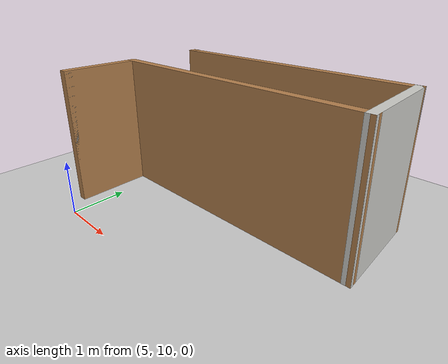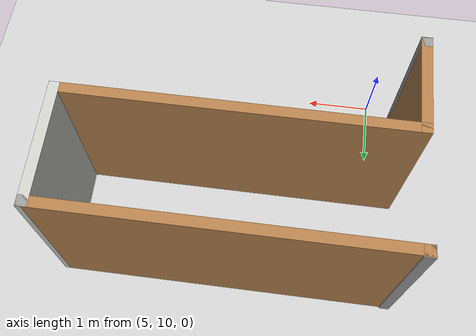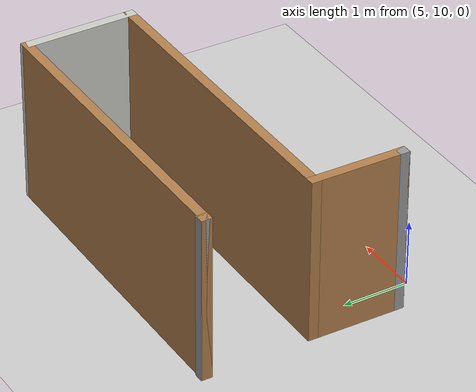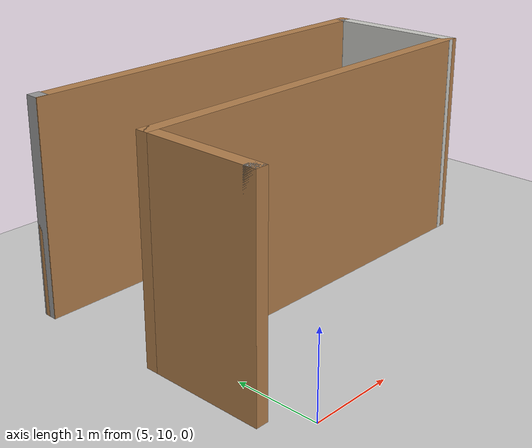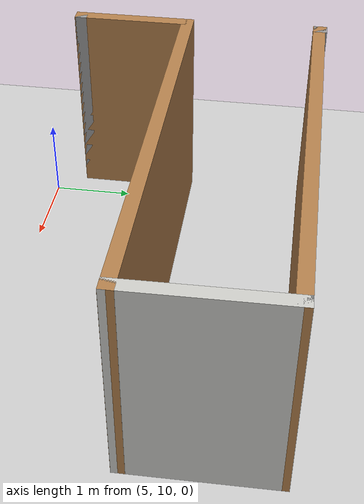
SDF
<sdf version="1.6">
 <world name="default">
  <model name="ground_plane">
   <static>1</static>
   <link name="link">
    <collision name="collision">
     <geometry><plane><normal>0 0 1</normal><size>100 100</size></plane></geometry>
     <surface>
      <contact><collide_bitmask>65535</collide_bitmask></contact>
      <friction><ode><mu>100</mu><mu2>50</mu2></ode></friction>
     </surface>
    </collision>
    <visual name="visual">
     <cast_shadows>0</cast_shadows>
     <geometry><plane><normal>0 0 1</normal><size>100 100</size></plane></geometry>
     <material>
      <script><uri>file://media/materials/scripts/gazebo.material</uri><name>Gazebo/Grey</name></script>
     </material>
    </visual>
   </link>
  </model>
  <model name="ecst_lab_v2">
   <pose>2.38151 7.60499 -4e-06 -3e-06 3e-06 -1.57079</pose>
   <link name="Wall_1">
    <collision name="Wall_1_Collision">
     <geometry><box><size>5 0.15 2.5</size></box></geometry>
     <pose>0 0 1.25 0 -0 0</pose>
    </collision>
    <visual name="Wall_1_Visual">
     <pose>0 0 1.25 0 -0 0</pose>
     <geometry><box><size>5 0.15 2.5</size></box></geometry>
     <material>
      <script><uri>file://media/materials/scripts/gazebo.material</uri><name>Gazebo/Wood</name></script>
      <ambient>1 1 1 1</ambient>
     </material>
     <meta><layer>0</layer></meta>
    </visual>
    <pose>-4.16301 4.67727 0 0 -0 -1.5708</pose>
    <inertial>
     <inertia><ixx>1</ixx><ixy>0</ixy><ixz>0</ixz><iyy>1</iyy><iyz>0</iyz><izz>1</izz></inertia>
     <mass>1</mass>
    </inertial>
   </link>
   <link name="Wall_131">
    <collision name="Wall_131_Collision">
     <geometry><box><size>0.16 0.15 2.5</size></box></geometry>
     <pose>0 0 1.25 0 -0 0</pose>
    </collision>
    <visual name="Wall_131_Visual">
     <pose>0 0 1.25 0 -0 0</pose>
     <geometry><box><size>0.16 0.15 2.5</size></box></geometry>
     <material>
      <script><uri>file://media/materials/scripts/gazebo.material</uri><name>Gazebo/Grey</name></script>
      <ambient>1 1 1 1</ambient>
     </material>
     <meta><layer>0</layer></meta>
    </visual>
    <pose>-5.8085 2.21822 0 0 -0 0</pose>
    <inertial>
     <inertia><ixx>1</ixx><ixy>0</ixy><ixz>0</ixz><iyy>1</iyy><iyz>0</iyz><izz>1</izz></inertia>
     <mass>1</mass>
    </inertial>
   </link>
   <link name="Wall_132">
    <collision name="Wall_132_Collision">
     <geometry><box><size>0.16 0.15 2.5</size></box></geometry>
     <pose>0 0 1.25 0 -0 0</pose>
    </collision>
    <visual name="Wall_132_Visual">
     <pose>0 0 1.25 0 -0 0</pose>
     <geometry><box><size>0.16 0.15 2.5</size></box></geometry>
     <material>
      <script><uri>file://media/materials/scripts/gazebo.material</uri><name>Gazebo/Wood</name></script>
      <ambient>1 1 1 1</ambient>
     </material>
     <meta><layer>0</layer></meta>
    </visual>
    <pose>-5.7985 2.21822 0 0 -0 0</pose>
    <inertial>
     <inertia><ixx>1</ixx><ixy>0</ixy><ixz>0</ixz><iyy>1</iyy><iyz>0</iyz><izz>1</izz></inertia>
     <mass>1</mass>
    </inertial>
   </link>
   <link name="Wall_133">
    <collision name="Wall_133_Collision">
     <geometry><box><size>5 0.15 2.5</size></box></geometry>
     <pose>0 0 1.25 0 -0 0</pose>
    </collision>
    <visual name="Wall_133_Visual">
     <pose>0 0 1.25 0 -0 0</pose>
     <geometry><box><size>5 0.15 2.5</size></box></geometry>
     <material>
      <script><uri>file://media/materials/scripts/gazebo.material</uri><name>Gazebo/Wood</name></script>
      <ambient>1 1 1 1</ambient>
     </material>
     <meta><layer>0</layer></meta>
    </visual>
    <pose>-5.7935 4.64322 0 0 -0 1.5708</pose>
    <inertial>
     <inertia><ixx>1</ixx><ixy>0</ixy><ixz>0</ixz><iyy>1</iyy><iyz>0</iyz><izz>1</izz></inertia>
     <mass>1</mass>
    </inertial>
   </link>
   <link name="Wall_134">
    <collision name="Wall_134_Collision">
     <geometry><box><size>0.15 0.15 2.5</size></box></geometry>
     <pose>0 0 1.25 0 -0 0</pose>
    </collision>
    <visual name="Wall_134_Visual">
     <pose>0 0 1.25 0 -0 0</pose>
     <geometry><box><size>0.15 0.15 2.5</size></box></geometry>
     <material>
      <script><uri>file://media/materials/scripts/gazebo.material</uri><name>Gazebo/Grey</name></script>
      <ambient>1 1 1 1</ambient>
     </material>
     <meta><layer>0</layer></meta>
    </visual>
    <pose>-5.7935 7.06822 0 0 -0 0</pose>
    <inertial>
     <inertia><ixx>1</ixx><ixy>0</ixy><ixz>0</ixz><iyy>1</iyy><iyz>0</iyz><izz>1</izz></inertia>
     <mass>1</mass>
    </inertial>
   </link>
   <link name="Wall_135">
    <collision name="Wall_135_Collision">
     <geometry><box><size>0.15 0.15 2.5</size></box></geometry>
     <pose>0 0 1.25 0 -0 0</pose>
    </collision>
    <visual name="Wall_135_Visual">
     <pose>0 0 1.25 0 -0 0</pose>
     <geometry><box><size>0.15 0.15 2.5</size></box></geometry>
     <material>
      <script><uri>file://media/materials/scripts/gazebo.material</uri><name>Gazebo/Grey</name></script>
      <ambient>1 1 1 1</ambient>
     </material>
     <meta><layer>0</layer></meta>
    </visual>
    <pose>-5.7935 7.06822 0 0 -0 0</pose>
    <inertial>
     <inertia><ixx>1</ixx><ixy>0</ixy><ixz>0</ixz><iyy>1</iyy><iyz>0</iyz><izz>1</izz></inertia>
     <mass>1</mass>
    </inertial>
   </link>
   <link name="Wall_136">
    <collision name="Wall_136_Collision">
     <geometry><box><size>0.15 0.15 2.5</size></box></geometry>
     <pose>0 0 1.25 0 -0 0</pose>
    </collision>
    <visual name="Wall_136_Visual">
     <pose>0 0 1.25 0 -0 0</pose>
     <geometry><box><size>0.15 0.15 2.5</size></box></geometry>
     <material>
      <script><uri>file://media/materials/scripts/gazebo.material</uri><name>Gazebo/Grey</name></script>
      <ambient>1 1 1 1</ambient>
     </material>
     <meta><layer>0</layer></meta>
    </visual>
    <pose>-5.7935 7.06822 0 0 -0 0</pose>
    <inertial>
     <inertia><ixx>1</ixx><ixy>0</ixy><ixz>0</ixz><iyy>1</iyy><iyz>0</iyz><izz>1</izz></inertia>
     <mass>1</mass>
    </inertial>
   </link>
   <link name="Wall_137">
    <collision name="Wall_137_Collision">
     <geometry><box><size>0.15 0.15 2.5</size></box></geometry>
     <pose>0 0 1.25 0 -0 0</pose>
    </collision>
    <visual name="Wall_137_Visual">
     <pose>0 0 1.25 0 -0 0</pose>
     <geometry><box><size>0.15 0.15 2.5</size></box></geometry>
     <material>
      <script><uri>file://media/materials/scripts/gazebo.material</uri><name>Gazebo/Grey</name></script>
      <ambient>1 1 1 1</ambient>
     </material>
     <meta><layer>0</layer></meta>
    </visual>
    <pose>-5.7935 7.06822 0 0 -0 0</pose>
    <inertial>
     <inertia><ixx>1</ixx><ixy>0</ixy><ixz>0</ixz><iyy>1</iyy><iyz>0</iyz><izz>1</izz></inertia>
     <mass>1</mass>
    </inertial>
   </link>
   <link name="Wall_138">
    <collision name="Wall_138_Collision">
     <geometry><box><size>1.78084 0.15 2.5</size></box></geometry>
     <pose>0 0 1.25 0 -0 0</pose>
    </collision>
    <visual name="Wall_138_Visual">
     <pose>0 0 1.25 0 -0 0</pose>
     <geometry><box><size>1.78084 0.15 2.5</size></box></geometry>
     <material>
      <script><uri>file://media/materials/scripts/gazebo.material</uri><name>Gazebo/CeilingTiled</name></script>
      <ambient>1 1 1 1</ambient>
     </material>
     <meta><layer>0</layer></meta>
    </visual>
    <pose>-4.97826 7.08524 0 0 -0 0.020886</pose>
    <inertial>
     <inertia><ixx>1</ixx><ixy>0</ixy><ixz>0</ixz><iyy>1</iyy><iyz>0</iyz><izz>1</izz></inertia>
     <mass>1</mass>
    </inertial>
   </link>
   <link name="Wall_2">
    <collision name="Wall_2_Collision">
     <geometry><box><size>1.5 0.15 2.5</size></box></geometry>
     <pose>0 0 1.25 0 -0 0</pose>
    </collision>
    <visual name="Wall_2_Visual">
     <pose>0 0 1.25 0 -0 0</pose>
     <geometry><box><size>1.5 0.15 2.5</size></box></geometry>
     <material>
      <script><uri>file://media/materials/scripts/gazebo.material</uri><name>Gazebo/Wood</name></script>
      <ambient>1 1 1 1</ambient>
     </material>
     <meta><layer>0</layer></meta>
    </visual>
    <pose>-3.48801 2.25228 0 0 -0 0</pose>
    <inertial>
     <inertia><ixx>1</ixx><ixy>0</ixy><ixz>0</ixz><iyy>1</iyy><iyz>0</iyz><izz>1</izz></inertia>
     <mass>1</mass>
    </inertial>
   </link>
   <link name="Wall_3">
    <collision name="Wall_3_Collision">
     <geometry><box><size>0.15 0.15 2.5</size></box></geometry>
     <pose>0 0 1.25 0 -0 0</pose>
    </collision>
    <visual name="Wall_3_Visual">
     <pose>0 0 1.25 0 -0 0</pose>
     <geometry><box><size>0.15 0.15 2.5</size></box></geometry>
     <material>
      <script><uri>file://media/materials/scripts/gazebo.material</uri><name>Gazebo/Grey</name></script>
      <ambient>1 1 1 1</ambient>
     </material>
     <meta><layer>0</layer></meta>
    </visual>
    <pose>-2.81301 2.25228 0 0 -0 0</pose>
    <inertial>
     <inertia><ixx>1</ixx><ixy>0</ixy><ixz>0</ixz><iyy>1</iyy><iyz>0</iyz><izz>1</izz></inertia>
     <mass>1</mass>
    </inertial>
   </link>
   <link name="Wall_4">
    <collision name="Wall_4_Collision">
     <geometry><box><size>0.15 0.15 2.5</size></box></geometry>
     <pose>0 0 1.25 0 -0 0</pose>
    </collision>
    <visual name="Wall_4_Visual">
     <pose>0 0 1.25 0 -0 0</pose>
     <geometry><box><size>0.15 0.15 2.5</size></box></geometry>
     <material>
      <script><uri>file://media/materials/scripts/gazebo.material</uri><name>Gazebo/Grey</name></script>
      <ambient>1 1 1 1</ambient>
     </material>
     <meta><layer>0</layer></meta>
    </visual>
    <pose>-2.81301 2.25228 0 0 -0 0</pose>
    <inertial>
     <inertia><ixx>1</ixx><ixy>0</ixy><ixz>0</ixz><iyy>1</iyy><iyz>0</iyz><izz>1</izz></inertia>
     <mass>1</mass>
    </inertial>
   </link>
  </model>
 </world>
</sdf>
